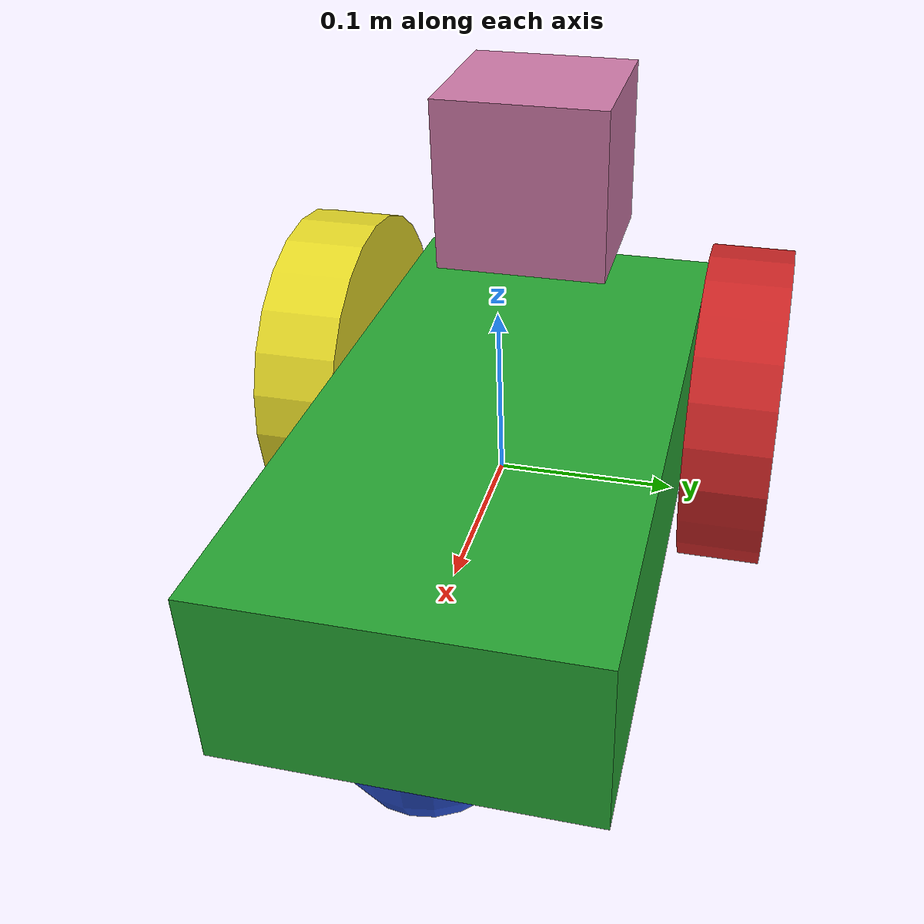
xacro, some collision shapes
<?xml version="1.0"?>
<robot name="simple_robot" xmlns:xacro="http://www.ros.org/wiki/xacro">

<xacro:property name="PI" value="3.1415926535897931"/>

  <material name="Grey">
    <color rgba="0.7 0.7 0.7 1.0"/>
  </material>

<!-- Start of Links - first link must be a non-inertial link -->
    <link name='base_link'>
    </link>
	  <link name='base_footprint'>
    </link>

<!-- Chassis Link - Main frame of the robot -->
    <link name="chassis">
        <inertial>
            <mass value="1"/>
            <inertia ixx="0.004" ixy="0.0" ixz="0.0" iyy="0.004" iyz="0.0" izz="0.002"/>
        </inertial>
        <collision name="chassis">
            <geometry>
                <box size=".4 .2 .1" />
            </geometry>
        </collision>
        <visual name="chassis">
            <geometry>
                <box size=".4 .2 .1" />
            </geometry>
        </visual>
    </link>

<!-- Castor Link - to keep the two-wheeled robot level -->
    <link name="castor">
        <inertial>
            <mass value=".1"/>
            <inertia ixx="0.004" ixy="0.0" ixz="0.0" iyy="0.004" iyz="0.0" izz="0.002"/>
        </inertial>
        <collision name="castor">
            <geometry>
                <sphere radius=".05" />
            </geometry>
        </collision>
        <visual name="castor">
            <geometry>
                <sphere radius=".05" />
            </geometry>
        </visual>
    </link>

<!-- Left Wheel Link - left wheel of two-wheeled robot -->
    <link name="left_wheel">
        <inertial>
            <mass value=".5"/>
            <inertia ixx="0.004" ixy="0.0" ixz="0.0" iyy="0.004" iyz="0.0" izz="0.002"/>
        </inertial>
        <pose>0.1 0.13 0.1 0 1.5707 1.5707</pose>
        <collision name="left_wheel">
            <geometry>
                <cylinder radius='.1' length='.05'/>
            </geometry>
        </collision>
        <visual name="left_wheel">
            <geometry>
                <cylinder radius='.1' length='.05'/>
            </geometry>
        </visual>
    </link>

<!-- Right Wheel Link - right wheel of two-wheeled robot -->
    <link name="right_wheel">
        <inertial>
            <mass value=".5"/>
            <inertia ixx="0.004" ixy="0.0" ixz="0.0" iyy="0.004" iyz="0.0" izz="0.002"/>
        </inertial>
        <pose>0.1 0.13 0.1 0 1.5707 1.5707</pose>
        <collision name="right_wheel">
            <geometry>
                <cylinder radius='.1' length='.05'/>
            </geometry>
        </collision>
        <visual name="right_wheel">
            <geometry>
                <cylinder radius='.1' length='.05'/>
            </geometry>
        </visual>
    </link>

<!-- Hokuyo Laser Link - laser for distance measurement -->
  <link name="hokuyo_link">
    <collision>
      <origin xyz="0 0 0" rpy="0 0 0"/>
      <geometry>
    <box size="0.1 0.1 0.1"/>
      </geometry>
    </collision>
    <visual>
      <origin xyz="0 0 0" rpy="0 0 0"/>
      <geometry>
        <mesh filename="$(find mobile_robotics_hschoon)/meshes/hokuyo.dae"/>
      </geometry>
    </visual>
    <inertial>
      <mass value="1e-5" />
      <origin xyz="0 0 0" rpy="0 0 0"/>
      <inertia ixx="1e-6" ixy="0" ixz="0" iyy="1e-6" iyz="0" izz="1e-6" />
    </inertial>
  </link>

<!-- libgazebo_ros_camera Link - forward facing camera -->
  <link name="camera_point_link">
    <collision>
      <origin xyz="0 0 0.3" rpy="0 0 0"/>
      <geometry>
    <box size="0.1 0.1 0.1"/>
      </geometry>
    </collision>

    <inertial>
      <mass value="1e-5" />
      <origin xyz="0 0 0" rpy="0 0 0"/>
      <inertia ixx="1e-6" ixy="0" ixz="0" iyy="1e-6" iyz="0" izz="1e-6" />
    </inertial>
  </link>
<!-- END of Link declaration -->

<!-- Start of Joints - connecting all links together -->
    <joint name="joint0" type="fixed">
        <parent link="base_link"/>
        <child link="chassis"/>
        <origin xyz="0 0 0" rpy="0 0 0"/>
        <axis xyz="0 1 0"/>
        <dynamics damping="0.7"/>
    </joint>

    <joint name="jointA" type="fixed">
        <parent link="base_link"/>
        <child link="base_footprint"/>
        <origin xyz="0 0 0" rpy="0 0 0"/>
        <axis xyz="0 1 0"/>
        <dynamics damping="0.7"/>
    </joint>

    <joint name="joint1" type="fixed">
        <parent link="chassis"/>
        <child link="castor"/>
        <origin xyz=".15 0 -.05" rpy="0 0 0"/>
        <axis xyz="0 1 0"/>
        <dynamics damping="0.7"/>
    </joint>

    <joint type="continuous" name="wheel_left_joint">
        <parent link="chassis"/>
        <child link="left_wheel"/>
        <origin xyz="-0.1 0.13 0" rpy="0 1.5707 1.5707"/>
        <axis xyz="0 0 1"/>
        <calibration rising="0.0"/>
        <dynamics damping="0.0" friction="0.0"/>
        <limit effort="30" velocity="2.0" />
        <safety_controller k_velocity="10" k_position="15" soft_lower_limit="-2.0" soft_upper_limit="0.5" />
    </joint>

    <joint type="continuous" name="wheel_right_joint">
        <parent link="chassis"/>
        <child link="right_wheel"/>
        <origin xyz="-0.1 -0.13 0" rpy="0 1.5707 1.5707"/>
        <axis xyz="0 0 1"/>
        <calibration rising="0.0"/>
        <dynamics damping="0.0" friction="0.0"/>
        <limit effort="30" velocity="2.0" />
        <safety_controller k_velocity="10" k_position="15" soft_lower_limit="-2.0" soft_upper_limit="0.5" />
    </joint>

    <joint name="camera_joint" type="fixed">
        <axis xyz="0 1 0" />
        <origin xyz="-0.1 0 .2" rpy="0 0 0"/>
        <parent link="base_link"/>
        <child link="camera_point_link"/>
            <dynamics damping="0.7"/>
    </joint>

    <joint name="hokuyo_joint" type="fixed">
        <axis xyz="0 1 0" />
        <origin xyz="-0.1 0 .15" rpy="0 0 3.1415926535897931"/> <!-- HERE: "-0.1 0 .14" -->
        <parent link="base_link"/>
        <child link="hokuyo_link"/>
            <dynamics damping="0.7"/>
      </joint>
<!-- END of Joint declaration -->

<!-- Transmissions are where the ros_controller interacts -->
    <ros2_control name="GazeboSystem" type="system">
      <hardware>
        <plugin>gazebo_ros2_control/GazeboSystem</plugin>
      </hardware>
      <joint name="wheel_left_joint">
        <command_interface name="velocity">
          <param name="min">-1</param>
          <param name="max">1</param>
        </command_interface>
        <state_interface name="position">
          <param name="initial_value">0.0</param>
        </state_interface>
        <state_interface name="velocity">
          <param name="initial_value">0.0</param>
        </state_interface>
      </joint>
      <joint name="wheel_right_joint">
        <command_interface name="velocity">
          <param name="min">-1</param>
          <param name="max">1</param>
        </command_interface>
        <state_interface name="position">
          <param name="initial_value">0.0</param>
        </state_interface>
        <state_interface name="velocity">
          <param name="initial_value">0.0</param>
        </state_interface>
      </joint>
    </ros2_control>

<!-- Joint state publisher -->
    <gazebo>
      <plugin filename="libgazebo_ros2_control.so" name="gazebo_ros2_control">
        <parameters>$(find mobile_robotics_hschoon)/config/simple_diff_drive.yaml</parameters>
      </plugin>
    </gazebo>

<!-- Gazebo references -->
  <gazebo reference="chassis">
  	<material>Gazebo/Green</material>
    	<mu1>.01</mu1>
    	<mu2>.01</mu2>
        <fdir1>1.000000 0.000000 0.000000</fdir1>
        <slip1>1.000000</slip1>
        <slip2>1.000000</slip2>
  </gazebo>

  <gazebo reference="left_wheel">
    	<material>Gazebo/Red</material>
    	<mu1>100000</mu1>
    	<mu2>100000</mu2>
        <fdir1>1.000000 0.000000 0.000000</fdir1>
        <slip1>0.000000</slip1>
        <slip2>0.000000</slip2>
  </gazebo>

  <gazebo reference="right_wheel">
    	<material>Gazebo/Yellow</material>
    	<mu1>100000</mu1>
    	<mu2>100000</mu2>
        <fdir1>1.000000 0.000000 0.000000</fdir1>
        <slip1>0.000000</slip1>
        <slip2>0.000000</slip2>
  </gazebo>

  <gazebo reference="castor">
  	<material>Gazebo/Blue</material>
    	<mu1>.01</mu1>
    	<mu2>.01</mu2>
        <fdir1>1.000000 0.000000 0.000000</fdir1>
        <slip1>1.000000</slip1>
        <slip2>1.000000</slip2>
  </gazebo>

  <gazebo reference="camera_point_link">
    <sensor type="camera" name="camera">
      <update_rate>30.0</update_rate>
      <camera name="head">
        <pose>0 0 0 0 0 0</pose>
        <horizontal_fov>1.3962634</horizontal_fov>
        <image>
          <width>800</width>
          <height>800</height>
          <format>R8G8B8</format>
        </image>
        <clip>
          <near>0.02</near>
          <far>300</far>
        </clip>
        <noise>
	  <type>gaussian</type>
	  <!-- Noise is sampled independently per pixel on each frame.
	  That pixel’s noise value is added to each of its color
	  channels, which at that point lie in the range [0,1]. -->
	  <mean>0.0</mean>
	  <stddev>0.007</stddev>
	</noise>
      </camera>
      <plugin name="camera_controller" filename="libgazebo_ros_camera.so">
      <ros>
        <remapping>image_raw:=custom_img</remapping>
      </ros>
        <alwaysOn>true</alwaysOn>
        <updateRate>0.0</updateRate>
        <cameraName>camera</cameraName>
        <imageTopicName>image_raw</imageTopicName>
        <cameraInfoTopicName>camera_info</cameraInfoTopicName>
        <frameName>camera_point_link</frameName>
        <hackBaseline>0.07</hackBaseline>
        <distortionK1>0.0</distortionK1>
        <distortionK2>0.0</distortionK2>
        <distortionK3>0.0</distortionK3>
        <distortionT1>0.0</distortionT1>
        <distortionT2>0.0</distortionT2>
      </plugin>
    </sensor>
  </gazebo>

  <gazebo reference="hokuyo_link">
    <sensor name="lidar" type="ray">
      <pose>0.215 0 0.215 0 0 0</pose>
      <always_on>true</always_on>
      <visualize>true</visualize>
      <update_rate>5</update_rate>
      <ray>
        <scan>
          <horizontal>
            <samples>360</samples>
            <resolution>1.00000</resolution>
            <min_angle>0.000000</min_angle>
            <max_angle>6.280000</max_angle>
          </horizontal>
        </scan>
        <range>
          <min>0.120000</min>
          <max>13.5</max>
          <resolution>0.015000</resolution>
        </range>
        <noise>
          <type>gaussian</type>
          <mean>0.0</mean>
          <stddev>0.001</stddev>
        </noise>
      </ray>
      <plugin name="scan" filename="libgazebo_ros_ray_sensor.so">
        <ros>
          <remapping>~/out:=scan</remapping>
        </ros>
        <output_type>sensor_msgs/LaserScan</output_type>
        <frame_name>hokuyo_link</frame_name>
      </plugin>
    </sensor>
  </gazebo>

</robot>
